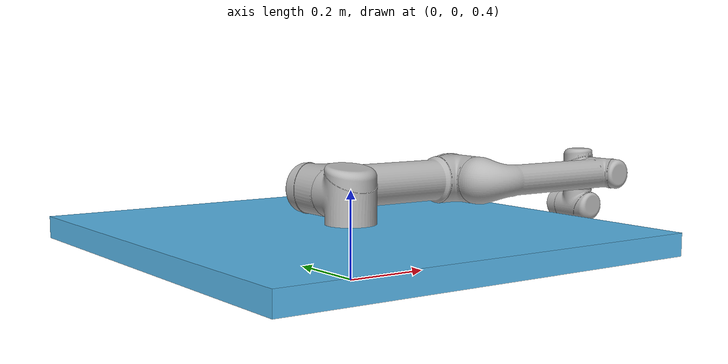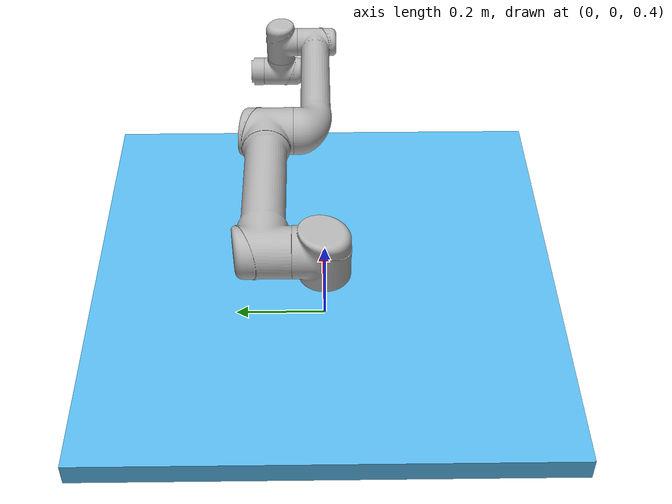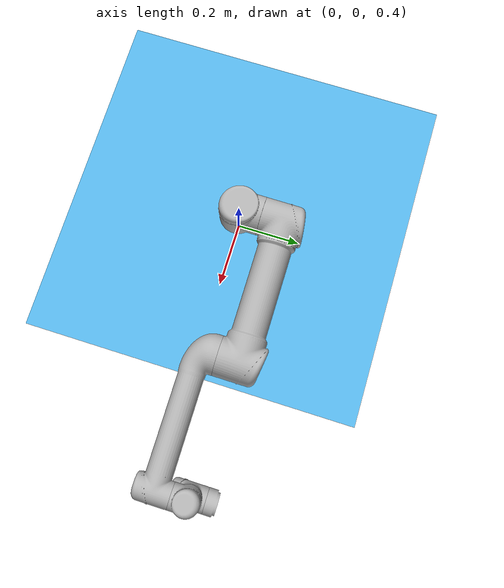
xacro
<?xml version="1.0" ?>
<robot name="myworkcell" xmlns:xacro="http://ros.org/wiki/xacro">
  <xacro:include filename="$(find ur_description)/urdf/ur5.urdf.xacro" />

  <link name="world"/>

  <link name="table">
    <visual>
      <geometry>
        <box size="1.0 1.0 0.05"/>
      </geometry>
    </visual>
    <collision>
      <geometry>
        <box size="1.0 1.0 0.05"/>
      </geometry>
    </collision>
  </link>

  <link name="camera_frame"/>

  <xacro:ur5_robot prefix="" joint_limited="true"/>

  <joint name="world_to_table" type="fixed">
    <parent link="world"/>
    <child link="table"/>
    <origin xyz="0 0 0.5" rpy="0 0 0"/>
  </joint>

  <joint name="world_to_camera" type="fixed">
    <parent link="world"/>
    <child link="camera_frame"/>
    <origin xyz="-0.25 -0.5 1.25" rpy="0 3.14159 0"/>
  </joint>

  <joint name="table_to_robot" type="fixed">
    <parent link="table"/>
    <child link="base_link"/>
    <origin xyz="0 0 0" rpy="0 0 0"/>
  </joint>
</robot>

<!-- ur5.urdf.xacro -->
<robot xmlns:xacro="http://www.ros.org/wiki/xacro">

  <xacro:include filename="$(find ur_description)/urdf/ur5.transmission.xacro" />
  <xacro:include filename="$(find ur_description)/urdf/ur5.gazebo.xacro" />

  <!-- Inertia parameters -->
  <property name="base_mass" value="4.0" />  <!-- This mass might be incorrect -->
  <property name="shoulder_mass" value="3.7000" />
  <property name="upper_arm_mass" value="8.3930" />
  <property name="forearm_mass" value="2.2750" />
  <property name="wrist_1_mass" value="1.2190" />
  <property name="wrist_2_mass" value="1.2190" />
  <property name="wrist_3_mass" value="0.1879" />

  <property name="shoulder_cog" value="0.0 0.00193 -0.02561" />
  <property name="upper_arm_cog" value="0.0 -0.024201 0.2125" />
  <property name="forearm_cog" value="0.0 0.0265 0.11993" />
  <property name="wrist_1_cog" value="0.0 0.110949 0.01634" />
  <property name="wrist_2_cog" value="0.0 0.0018 0.11099" />
  <property name="wrist_3_cog" value="0.0 0.001159 0.0" />

  <!-- Kinematic model -->
  <!-- Properties from urcontrol.conf -->
  <property name="ur5_d1" value="0.089159" />
  <property name="ur5_a2" value="-0.42500" />
  <property name="ur5_a3" value="-0.39225" />
  <property name="ur5_d4" value="0.10915" />
  <property name="ur5_d5" value="0.09465" />
  <property name="ur5_d6" value="0.0823" />

  <!-- Arbitrary offsets for shoulder/elbow joints -->
  <property name="shoulder_offset" value="0.13585" />  <!-- measured from model -->
  <property name="elbow_offset" value="-0.1197" /> <!-- measured from model -->

  <!-- link lengths used in model -->
  <property name="shoulder_height" value="${ur5_d1}" />
  <property name="upper_arm_length" value="${-ur5_a2}" />
  <property name="forearm_length" value="${-ur5_a3}" />
  <property name="wrist_1_length" value="${ur5_d4 - elbow_offset - shoulder_offset}" />
  <property name="wrist_2_length" value="${ur5_d5}" />
  <property name="wrist_3_length" value="${ur5_d6}" />
  <!--property name="shoulder_height" value="0.089159" /-->
  <!--property name="shoulder_offset" value="0.13585" /-->  <!-- shoulder_offset - elbow_offset + wrist_1_length = 0.10915 -->
  <!--property name="upper_arm_length" value="0.42500" /-->
  <!--property name="elbow_offset" value="0.1197" /-->       <!-- CAD measured -->
  <!--property name="forearm_length" value="0.39225" /-->
  <!--property name="wrist_1_length" value="0.093" /-->     <!-- CAD measured -->
  <!--property name="wrist_2_length" value="0.09465" /-->   <!-- In CAD this distance is 0.930, but in the spec it is 0.09465 -->
  <!--property name="wrist_3_length" value="0.0823" /-->

  <property name="shoulder_radius" value="0.060" />   <!-- manually measured -->
  <property name="upper_arm_radius" value="0.054" />  <!-- manually measured -->
  <property name="elbow_radius" value="0.060" />      <!-- manually measured -->
  <property name="forearm_radius" value="0.040" />    <!-- manually measured -->
  <property name="wrist_radius" value="0.045" />      <!-- manually measured -->

  <xacro:macro name="cylinder_inertial" params="radius length mass *origin">
    <inertial>
      <mass value="${mass}" />
      <insert_block name="origin" />
      <inertia ixx="${0.0833333 * mass * (3 * radius * radius + length * length)}" ixy="0.0" ixz="0.0"
        iyy="${0.0833333 * mass * (3 * radius * radius + length * length)}" iyz="0.0"
        izz="${0.5 * mass * radius * radius}" />
    </inertial>
  </xacro:macro>

  <xacro:macro name="ur5_robot" params="prefix joint_limited">

    <link name="${prefix}base_link" >
      <visual>
        <geometry>
          <mesh filename="package://ur_description/meshes/ur5/visual/Base.dae" />
        </geometry>
        <material name="LightGrey">
          <color rgba="0.7 0.7 0.7 1.0"/>
        </material>
      </visual>
      <collision>
        <geometry>
          <mesh filename="package://ur_description/meshes/ur5/collision/base.stl" />
        </geometry>
      </collision>
      <xacro:cylinder_inertial radius="0.06" length="0.05" mass="${base_mass}">
        <origin xyz="0.0 0.0 0.0" rpy="0 0 0" />
      </xacro:cylinder_inertial>
    </link>

    <joint name="${prefix}shoulder_pan_joint" type="revolute">
      <parent link="${prefix}base_link" />
      <child link = "${prefix}shoulder_link" />
      <origin xyz="0.0 0.0 ${shoulder_height}" rpy="0.0 0.0 0.0" />
      <axis xyz="0 0 1" />
      <xacro:unless value="${joint_limited}">
        <limit lower="${-2.0 * pi}" upper="${2.0 * pi}" effort="150.0" velocity="3.15"/>
      </xacro:unless>
      <xacro:if value="${joint_limited}">
        <limit lower="${-pi}" upper="${pi}" effort="150.0" velocity="3.15"/>
      </xacro:if>
      <dynamics damping="0.0" friction="0.0"/>
    </joint>

    <link name="${prefix}shoulder_link">
      <visual>
        <geometry>
          <mesh filename="package://ur_description/meshes/ur5/visual/Shoulder.dae" />
        </geometry>
        <material name="LightGrey">
          <color rgba="0.7 0.7 0.7 1.0"/>
        </material>
      </visual>
      <collision>
        <geometry>
          <mesh filename="package://ur_description/meshes/ur5/collision/shoulder.stl" />
        </geometry>
      </collision>
      <xacro:cylinder_inertial radius="0.06" length="0.15" mass="${shoulder_mass}">
        <origin xyz="0.0 0.0 0.0" rpy="0 0 0" />
      </xacro:cylinder_inertial>
    </link>

    <joint name="${prefix}shoulder_lift_joint" type="revolute">
      <parent link="${prefix}shoulder_link" />
      <child link = "${prefix}upper_arm_link" />
      <origin xyz="0.0 ${shoulder_offset} 0.0" rpy="0.0 ${pi / 2.0} 0.0" />
      <axis xyz="0 1 0" />
      <xacro:unless value="${joint_limited}">
        <limit lower="${-2.0 * pi}" upper="${2.0 * pi}" effort="150.0" velocity="3.15"/>
      </xacro:unless>
      <xacro:if value="${joint_limited}">
        <limit lower="${-pi}" upper="${pi}" effort="150.0" velocity="3.15"/>
      </xacro:if>
      <dynamics damping="0.0" friction="0.0"/>
    </joint>

    <link name="${prefix}upper_arm_link">
      <visual>
        <geometry>
          <mesh filename="package://ur_description/meshes/ur5/visual/UpperArm.dae" />
        </geometry>
        <material name="LightGrey">
          <color rgba="0.7 0.7 0.7 1.0"/>
        </material>
      </visual>
      <collision>
        <geometry>
          <mesh filename="package://ur_description/meshes/ur5/collision/upper_arm.stl" />
        </geometry>
      </collision>
      <xacro:cylinder_inertial radius="0.06" length="0.56" mass="${upper_arm_mass}">
        <origin xyz="0.0 0.0 0.28" rpy="0 0 0" />
      </xacro:cylinder_inertial>
    </link>

    <joint name="${prefix}elbow_joint" type="revolute">
      <parent link="${prefix}upper_arm_link" />
      <child link = "${prefix}forearm_link" />
      <origin xyz="0.0 ${elbow_offset} ${upper_arm_length}" rpy="0.0 0.0 0.0" />
      <axis xyz="0 1 0" />
      <xacro:unless value="${joint_limited}">
        <limit lower="${-2.0 * pi}" upper="${2.0 * pi}" effort="150.0" velocity="3.15"/>
      </xacro:unless>
      <xacro:if value="${joint_limited}">
        <limit lower="${-pi}" upper="${pi}" effort="150.0" velocity="3.15"/>
      </xacro:if>
      <dynamics damping="0.0" friction="0.0"/>
    </joint>

    <link name="${prefix}forearm_link">
      <visual>
        <geometry>
          <mesh filename="package://ur_description/meshes/ur5/visual/Forearm.dae" />
        </geometry>
        <material name="LightGrey">
          <color rgba="0.7 0.7 0.7 1.0"/>
        </material>
      </visual>
      <collision>
        <geometry>
          <mesh filename="package://ur_description/meshes/ur5/collision/forearm.stl" />
        </geometry>
      </collision>
      <xacro:cylinder_inertial radius="0.06" length="0.5" mass="${forearm_mass}">
        <origin xyz="0.0 0.0 0.25" rpy="0 0 0" />
      </xacro:cylinder_inertial>
    </link>

    <joint name="${prefix}wrist_1_joint" type="revolute">
      <parent link="${prefix}forearm_link" />
      <child link = "${prefix}wrist_1_link" />
      <origin xyz="0.0 0.0 ${forearm_length}" rpy="0.0 ${pi / 2.0} 0.0" />
      <axis xyz="0 1 0" />
      <xacro:unless value="${joint_limited}">
        <limit lower="${-2.0 * pi}" upper="${2.0 * pi}" effort="28.0" velocity="3.2"/>
      </xacro:unless>
      <xacro:if value="${joint_limited}">
        <limit lower="${-pi}" upper="${pi}" effort="28.0" velocity="3.2"/>
      </xacro:if>
      <dynamics damping="0.0" friction="0.0"/>
    </joint>

    <link name="${prefix}wrist_1_link">
      <visual>
        <geometry>
          <mesh filename="package://ur_description/meshes/ur5/visual/Wrist1.dae" />
        </geometry>
        <material name="LightGrey">
          <color rgba="0.7 0.7 0.7 1.0"/>
        </material>
      </visual>
      <collision>
        <geometry>
          <mesh filename="package://ur_description/meshes/ur5/collision/wrist_1.stl" />
        </geometry>
      </collision>
      <xacro:cylinder_inertial radius="0.6" length="0.12" mass="${wrist_1_mass}">
        <origin xyz="0.0 0.0 0.0" rpy="0 0 0" />
      </xacro:cylinder_inertial>
    </link>

    <joint name="${prefix}wrist_2_joint" type="revolute">
      <parent link="${prefix}wrist_1_link" />
      <child link = "${prefix}wrist_2_link" />
      <origin xyz="0.0 ${wrist_1_length} 0.0" rpy="0.0 0.0 0.0" />
      <axis xyz="0 0 1" />
      <xacro:unless value="${joint_limited}">
        <limit lower="${-2.0 * pi}" upper="${2.0 * pi}" effort="28.0" velocity="3.2"/>
      </xacro:unless>
      <xacro:if value="${joint_limited}">
        <limit lower="${-pi}" upper="${pi}" effort="28.0" velocity="3.2"/>
      </xacro:if>
      <dynamics damping="0.0" friction="0.0"/>
    </joint>

    <link name="${prefix}wrist_2_link">
      <visual>
        <geometry>
          <mesh filename="package://ur_description/meshes/ur5/visual/Wrist2.dae" />
        </geometry>
        <material name="LightGrey">
          <color rgba="0.7 0.7 0.7 1.0"/>
        </material>
      </visual>
      <collision>
        <geometry>
          <mesh filename="package://ur_description/meshes/ur5/collision/wrist_2.stl" />
        </geometry>
      </collision>
      <xacro:cylinder_inertial radius="0.6" length="0.12" mass="${wrist_2_mass}">
        <origin xyz="0.0 0.0 0.0" rpy="0 0 0" />
      </xacro:cylinder_inertial>
    </link>

    <joint name="${prefix}wrist_3_joint" type="revolute">
      <parent link="${prefix}wrist_2_link" />
      <child link = "${prefix}wrist_3_link" />
      <origin xyz="0.0 0.0 ${wrist_2_length}" rpy="0.0 0.0 0.0" />
      <axis xyz="0 1 0" />
      <xacro:unless value="${joint_limited}">
        <limit lower="${-2.0 * pi}" upper="${2.0 * pi}" effort="28.0" velocity="3.2"/>
      </xacro:unless>
      <xacro:if value="${joint_limited}">
        <limit lower="${-pi}" upper="${pi}" effort="28.0" velocity="3.2"/>
      </xacro:if>
      <dynamics damping="0.0" friction="0.0"/>
    </joint>

    <link name="${prefix}wrist_3_link">
      <visual>
        <geometry>
          <mesh filename="package://ur_description/meshes/ur5/visual/Wrist3.dae" />
        </geometry>
        <material name="LightGrey">
          <color rgba="0.7 0.7 0.7 1.0"/>
        </material>
      </visual>
      <collision>
        <geometry>
          <mesh filename="package://ur_description/meshes/ur5/collision/wrist_3.stl" />
        </geometry>
      </collision>
      <xacro:cylinder_inertial radius="0.6" length="0.12" mass="${wrist_3_mass}">
        <origin xyz="0.0 0.0 0.0" rpy="0 0 0" />
      </xacro:cylinder_inertial>
    </link>

    <joint name="${prefix}ee_fixed_joint" type="fixed">
      <parent link="${prefix}wrist_3_link" />
      <child link = "${prefix}ee_link" />
      <origin xyz="0.0 ${wrist_3_length} 0.0" rpy="0.0 0.0 ${pi/2.0}" />
    </joint>

    <link name="${prefix}ee_link">
      <collision>
        <geometry>
          <box size="0.01 0.01 0.01"/>
        </geometry>
        <origin rpy="0 0 0" xyz="-0.01 0 0"/>
      </collision>
    </link>

    <xacro:ur5_arm_transmission prefix="${prefix}" />
    <xacro:ur5_arm_gazebo prefix="${prefix}" />

  </xacro:macro>
</robot>
